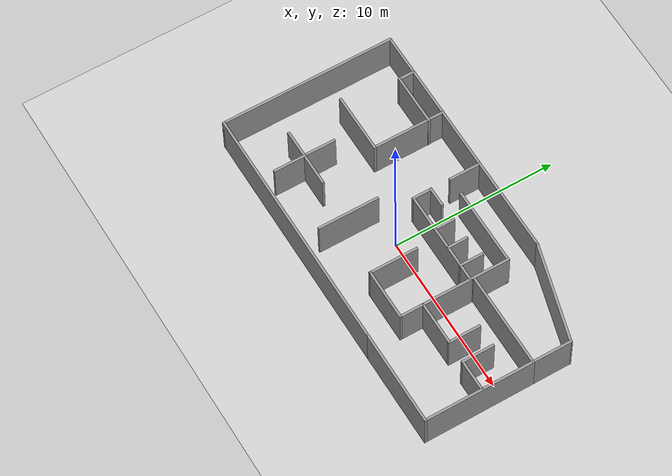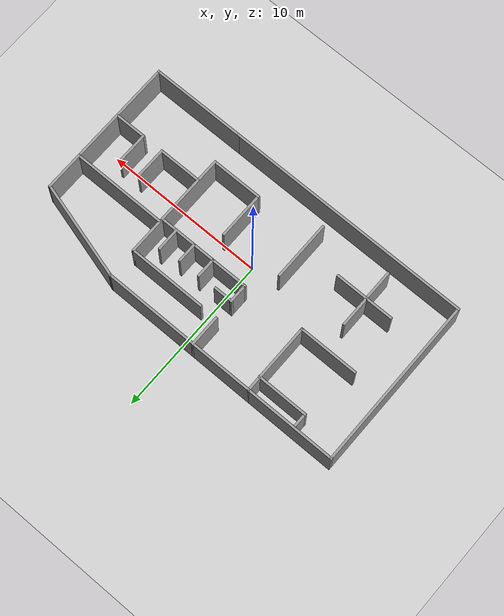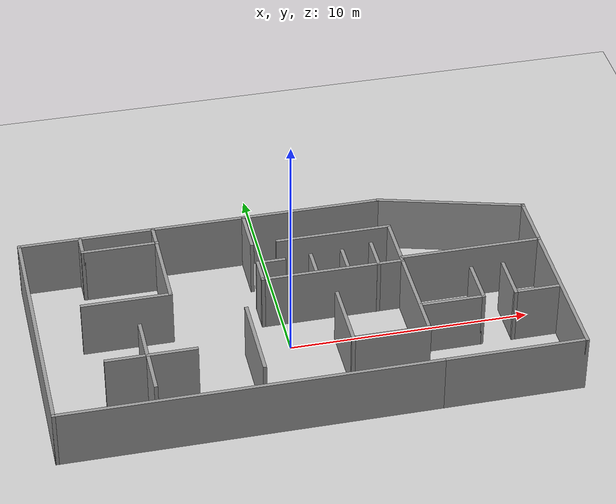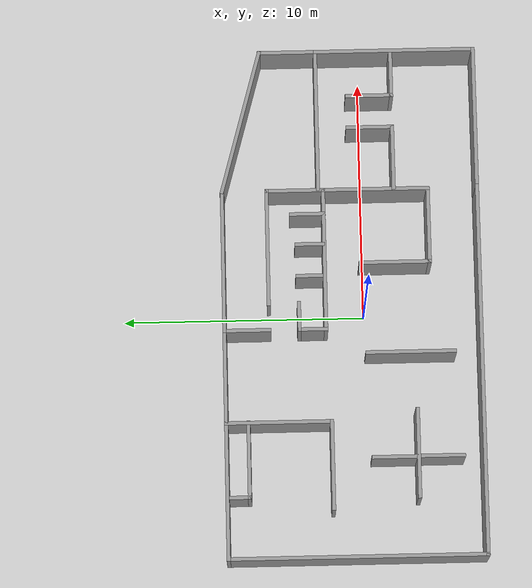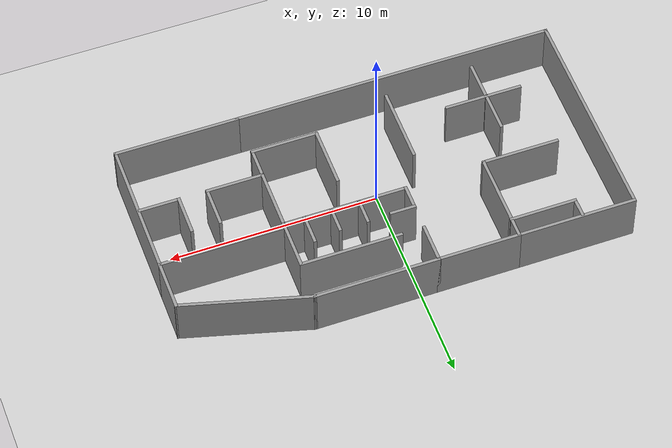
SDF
<sdf version="1.6">
 <world name="default">
  <light name="sun" type="directional">
   <pose>0 0 10 0 -0 0</pose>
   <diffuse>0.8 0.8 0.8 1</diffuse>
   <specular>0.1 0.1 0.1 1</specular>
   <attenuation>
    <range>1000</range>
    <constant>0.9</constant>
    <linear>0.01</linear>
    <quadratic>0.001</quadratic>
   </attenuation>
   <direction>-0.5 0.5 -1</direction>
  </light>
  <model name="ground_plane">
   <static>1</static>
   <link name="link">
    <collision name="collision">
     <geometry><plane><normal>0 0 1</normal><size>100 100</size></plane></geometry>
     <surface><friction><ode><mu>100</mu><mu2>50</mu2></ode></friction></surface>
    </collision>
    <visual name="visual">
     <cast_shadows>0</cast_shadows>
     <geometry><plane><normal>0 0 1</normal><size>100 100</size></plane></geometry>
     <material>
      <script><uri>file://media/materials/scripts/gazebo.material</uri><name>Gazebo/Grey</name></script>
     </material>
    </visual>
   </link>
  </model>
  <gravity>0 0 -9.8</gravity>
  <magnetic_field>6e-06 2.3e-05 -4.2e-05</magnetic_field>
  <atmosphere type="adiabatic"/>
  <physics name="default_physics" default="0" type="ode">
   <max_step_size>0.001</max_step_size>
   <real_time_factor>1</real_time_factor>
   <real_time_update_rate>1000</real_time_update_rate>
  </physics>
  <scene><ambient>0.4 0.4 0.4 1</ambient><background>0.7 0.7 0.7 1</background><shadows>1</shadows></scene>
  <spherical_coordinates>
   <surface_model>EARTH_WGS84</surface_model>
   <latitude_deg>0</latitude_deg>
   <longitude_deg>0</longitude_deg>
   <elevation>0</elevation>
   <heading_deg>0</heading_deg>
  </spherical_coordinates>
  <model name="Building3">
   <pose>0.340715 0.515177 0 0 -0 0</pose>
   <link name="Wall_153">
    <collision name="Wall_153_Collision">
     <geometry><box><size>4 0.15 2.5</size></box></geometry>
     <pose>0 0 1.25 0 -0 0</pose>
    </collision>
    <visual name="Wall_153_Visual">
     <pose>0 0 1.25 0 -0 0</pose>
     <geometry><box><size>4 0.15 2.5</size></box></geometry>
     <material>
      <script><uri>file://media/materials/scripts/gazebo.material</uri><name>Gazebo/Grey</name></script>
      <ambient>1 1 1 1</ambient>
     </material>
    </visual>
    <pose>-3.08371 5.29129 0 0 -0 0</pose>
   </link>
   <link name="Wall_154">
    <collision name="Wall_154_Collision">
     <geometry><box><size>2 0.15 2.5</size></box></geometry>
     <pose>0 0 1.25 0 -0 0</pose>
    </collision>
    <visual name="Wall_154_Visual">
     <pose>0 0 1.25 0 -0 0</pose>
     <geometry><box><size>2 0.15 2.5</size></box></geometry>
     <material>
      <script><uri>file://media/materials/scripts/gazebo.material</uri><name>Gazebo/Grey</name></script>
      <ambient>1 1 1 1</ambient>
     </material>
    </visual>
    <pose>-1.15871 4.36629 0 0 0 -1.5708</pose>
   </link>
   <link name="Wall_156">
    <collision name="Wall_156_Collision">
     <geometry><box><size>6 0.15 2.5</size></box></geometry>
     <pose>0 0 1.25 0 -0 0</pose>
    </collision>
    <visual name="Wall_156_Visual">
     <pose>0 0 1.25 0 -0 0</pose>
     <geometry><box><size>6 0.15 2.5</size></box></geometry>
     <material>
      <script><uri>file://media/materials/scripts/gazebo.material</uri><name>Gazebo/Grey</name></script>
      <ambient>1 1 1 1</ambient>
     </material>
    </visual>
    <pose>1.76629 5.29129 0 0 -0 0</pose>
   </link>
   <link name="Wall_161">
    <collision name="Wall_161_Collision">
     <geometry><box><size>4.9 0.15 2.5</size></box></geometry>
     <pose>0 0 1.25 0 -0 0</pose>
    </collision>
    <visual name="Wall_161_Visual">
     <pose>0 0 1.25 0 -0 0</pose>
     <geometry><box><size>4.9 0.15 2.5</size></box></geometry>
     <material>
      <script><uri>file://media/materials/scripts/gazebo.material</uri><name>Gazebo/Grey</name></script>
      <ambient>1 1 1 1</ambient>
     </material>
    </visual>
    <pose>2.31629 3.44129 0 0 -0 0</pose>
   </link>
   <link name="Wall_165">
    <collision name="Wall_165_Collision">
     <geometry><box><size>2.5 0.15 2.5</size></box></geometry>
     <pose>0 0 1.25 0 -0 0</pose>
    </collision>
    <visual name="Wall_165_Visual">
     <pose>0 0 1.25 0 -0 0</pose>
     <geometry><box><size>2.5 0.15 2.5</size></box></geometry>
     <material>
      <script><uri>file://media/materials/scripts/gazebo.material</uri><name>Gazebo/Grey</name></script>
      <ambient>1 1 1 1</ambient>
     </material>
    </visual>
    <pose>4.69129 2.26629 0 0 0 -1.5708</pose>
   </link>
   <link name="Wall_167">
    <collision name="Wall_167_Collision">
     <geometry><box><size>6 0.15 2.5</size></box></geometry>
     <pose>0 0 1.25 0 -0 0</pose>
    </collision>
    <visual name="Wall_167_Visual">
     <pose>0 0 1.25 0 -0 0</pose>
     <geometry><box><size>6 0.15 2.5</size></box></geometry>
     <material>
      <script><uri>file://media/materials/scripts/gazebo.material</uri><name>Gazebo/Grey</name></script>
      <ambient>1 1 1 1</ambient>
     </material>
    </visual>
    <pose>1.76629 1.09129 0 0 -0 3.14159</pose>
   </link>
   <link name="Wall_168">
    <collision name="Wall_168_Collision">
     <geometry><box><size>1.25 0.15 2.5</size></box></geometry>
     <pose>0 0 1.25 0 -0 0</pose>
    </collision>
    <visual name="Wall_168_Visual">
     <pose>0 0 1.25 0 -0 0</pose>
     <geometry><box><size>1.25 0.15 2.5</size></box></geometry>
     <material>
      <script><uri>file://media/materials/scripts/gazebo.material</uri><name>Gazebo/Grey</name></script>
      <ambient>1 1 1 1</ambient>
     </material>
    </visual>
    <pose>-1.15871 1.64129 0 0 -0 1.5708</pose>
   </link>
   <link name="Wall_170">
    <collision name="Wall_170_Collision">
     <geometry><box><size>1.25 0.15 2.5</size></box></geometry>
     <pose>0 0 1.25 0 -0 0</pose>
    </collision>
    <visual name="Wall_170_Visual">
     <pose>0 0 1.25 0 -0 0</pose>
     <geometry><box><size>1.25 0.15 2.5</size></box></geometry>
     <material>
      <script><uri>file://media/materials/scripts/gazebo.material</uri><name>Gazebo/Grey</name></script>
      <ambient>1 1 1 1</ambient>
     </material>
    </visual>
    <pose>-0.608713 2.19129 0 0 -0 0</pose>
   </link>
   <link name="Wall_172">
    <collision name="Wall_172_Collision">
     <geometry><box><size>1.25 0.15 2.5</size></box></geometry>
     <pose>0 0 1.25 0 -0 0</pose>
    </collision>
    <visual name="Wall_172_Visual">
     <pose>0 0 1.25 0 -0 0</pose>
     <geometry><box><size>1.25 0.15 2.5</size></box></geometry>
     <material>
      <script><uri>file://media/materials/scripts/gazebo.material</uri><name>Gazebo/Grey</name></script>
      <ambient>1 1 1 1</ambient>
     </material>
    </visual>
    <pose>1.0841 1.68212 0 0 -0 1.5708</pose>
   </link>
   <link name="Wall_174">
    <collision name="Wall_174_Collision">
     <geometry><box><size>1.25 0.15 2.5</size></box></geometry>
     <pose>0 0 1.25 0 -0 0</pose>
    </collision>
    <visual name="Wall_174_Visual">
     <pose>0 0 1.25 0 -0 0</pose>
     <geometry><box><size>1.25 0.15 2.5</size></box></geometry>
     <material>
      <script><uri>file://media/materials/scripts/gazebo.material</uri><name>Gazebo/Grey</name></script>
      <ambient>1 1 1 1</ambient>
     </material>
    </visual>
    <pose>2.41445 1.69349 0 0 -0 1.5708</pose>
   </link>
   <link name="Wall_177">
    <collision name="Wall_177_Collision">
     <geometry><box><size>1.5 0.15 2.5</size></box></geometry>
     <pose>0 0 1.25 0 -0 0</pose>
    </collision>
    <visual name="Wall_177_Visual">
     <pose>0 0 1.25 0 -0 0</pose>
     <geometry><box><size>1.5 0.15 2.5</size></box></geometry>
     <material>
      <script><uri>file://media/materials/scripts/gazebo.material</uri><name>Gazebo/Grey</name></script>
      <ambient>1 1 1 1</ambient>
     </material>
    </visual>
    <pose>3.68795 1.76164 0 0 -0 1.5708</pose>
   </link>
   <link name="Wall_179">
    <collision name="Wall_179_Collision">
     <geometry><box><size>4.5 0.15 2.5</size></box></geometry>
     <pose>0 0 1.25 0 -0 0</pose>
    </collision>
    <visual name="Wall_179_Visual">
     <pose>0 0 1.25 0 -0 0</pose>
     <geometry><box><size>4.5 0.15 2.5</size></box></geometry>
     <material>
      <script><uri>file://media/materials/scripts/gazebo.material</uri><name>Gazebo/Grey</name></script>
      <ambient>1 1 1 1</ambient>
     </material>
    </visual>
    <pose>-5.00871 3.11629 0 0 0 -1.5708</pose>
   </link>
   <link name="Wall_181">
    <collision name="Wall_181_Collision">
     <geometry><box><size>4.5 0.15 2.5</size></box></geometry>
     <pose>0 0 1.25 0 -0 0</pose>
    </collision>
    <visual name="Wall_181_Visual">
     <pose>0 0 1.25 0 -0 0</pose>
     <geometry><box><size>4.5 0.15 2.5</size></box></geometry>
     <material>
      <script><uri>file://media/materials/scripts/gazebo.material</uri><name>Gazebo/Grey</name></script>
      <ambient>1 1 1 1</ambient>
     </material>
    </visual>
    <pose>4.69129 -1.08371 0 0 0 -1.5708</pose>
   </link>
   <link name="Wall_187">
    <collision name="Wall_187_Collision">
     <geometry><box><size>3 0.15 2.5</size></box></geometry>
     <pose>0 0 1.25 0 -0 0</pose>
    </collision>
    <visual name="Wall_187_Visual">
     <pose>0 0 1.25 0 -0 0</pose>
     <geometry><box><size>3 0.15 2.5</size></box></geometry>
     <material>
      <script><uri>file://media/materials/scripts/gazebo.material</uri><name>Gazebo/Grey</name></script>
      <ambient>1 1 1 1</ambient>
     </material>
    </visual>
    <pose>1.59129 -1.83371 0 0 -0 1.5708</pose>
   </link>
   <link name="Wall_190">
    <collision name="Wall_190_Collision">
     <geometry><box><size>5.75 0.15 2.5</size></box></geometry>
     <pose>0 0 1.25 0 -0 0</pose>
    </collision>
    <visual name="Wall_190_Visual">
     <pose>0 0 1.25 0 -0 0</pose>
     <geometry><box><size>5.75 0.15 2.5</size></box></geometry>
     <material>
      <script><uri>file://media/materials/scripts/gazebo.material</uri><name>Gazebo/Grey</name></script>
      <ambient>1 1 1 1</ambient>
     </material>
    </visual>
    <pose>-7.80871 5.29129 0 0 -0 3.14159</pose>
   </link>
   <link name="Wall_194">
    <collision name="Wall_194_Collision">
     <geometry><box><size>10.75 0.15 2.5</size></box></geometry>
     <pose>0 0 1.25 0 -0 0</pose>
    </collision>
    <visual name="Wall_194_Visual">
     <pose>0 0 1.25 0 -0 0</pose>
     <geometry><box><size>10.75 0.15 2.5</size></box></geometry>
     <material>
      <script><uri>file://media/materials/scripts/gazebo.material</uri><name>Gazebo/Grey</name></script>
      <ambient>1 1 1 1</ambient>
     </material>
    </visual>
    <pose>-10.6087 -0.008714 0 0 0 -1.5708</pose>
   </link>
   <link name="Wall_197">
    <collision name="Wall_197_Collision">
     <geometry><box><size>15.5 0.15 2.5</size></box></geometry>
     <pose>0 0 1.25 0 -0 0</pose>
    </collision>
    <visual name="Wall_197_Visual">
     <pose>0 0 1.25 0 -0 0</pose>
     <geometry><box><size>15.5 0.15 2.5</size></box></geometry>
     <material>
      <script><uri>file://media/materials/scripts/gazebo.material</uri><name>Gazebo/Grey</name></script>
      <ambient>1 1 1 1</ambient>
     </material>
    </visual>
    <pose>-2.93371 -5.30871 0 0 -0 0</pose>
   </link>
   <link name="Wall_199">
    <collision name="Wall_199_Collision">
     <geometry><box><size>6 0.15 2.5</size></box></geometry>
     <pose>0 0 1.25 0 -0 0</pose>
    </collision>
    <visual name="Wall_199_Visual">
     <pose>0 0 1.25 0 -0 0</pose>
     <geometry><box><size>6 0.15 2.5</size></box></geometry>
     <material>
      <script><uri>file://media/materials/scripts/gazebo.material</uri><name>Gazebo/Grey</name></script>
      <ambient>1 1 1 1</ambient>
     </material>
    </visual>
    <pose>7.66629 1.29129 0 0 -0 0</pose>
   </link>
   <link name="Wall_200">
    <collision name="Wall_200_Collision">
     <geometry><box><size>6.75 0.15 2.5</size></box></geometry>
     <pose>0 0 1.25 0 -0 0</pose>
    </collision>
    <visual name="Wall_200_Visual">
     <pose>0 0 1.25 0 -0 0</pose>
     <geometry><box><size>6.75 0.15 2.5</size></box></geometry>
     <material>
      <script><uri>file://media/materials/scripts/gazebo.material</uri><name>Gazebo/Grey</name></script>
      <ambient>1 1 1 1</ambient>
     </material>
    </visual>
    <pose>10.5913 -2.00871 0 0 0 -1.5708</pose>
   </link>
   <link name="Wall_201">
    <collision name="Wall_201_Collision">
     <geometry><box><size>6 0.15 2.5</size></box></geometry>
     <pose>0 0 1.25 0 -0 0</pose>
    </collision>
    <visual name="Wall_201_Visual">
     <pose>0 0 1.25 0 -0 0</pose>
     <geometry><box><size>6 0.15 2.5</size></box></geometry>
     <material>
      <script><uri>file://media/materials/scripts/gazebo.material</uri><name>Gazebo/Grey</name></script>
      <ambient>1 1 1 1</ambient>
     </material>
    </visual>
    <pose>7.66629 -5.30871 0 0 -0 3.14159</pose>
   </link>
   <link name="Wall_203">
    <collision name="Wall_203_Collision">
     <geometry><box><size>3.75 0.15 2.5</size></box></geometry>
     <pose>0 0 1.25 0 -0 0</pose>
    </collision>
    <visual name="Wall_203_Visual">
     <pose>0 0 1.25 0 -0 0</pose>
     <geometry><box><size>3.75 0.15 2.5</size></box></geometry>
     <material>
      <script><uri>file://media/materials/scripts/gazebo.material</uri><name>Gazebo/Grey</name></script>
      <ambient>1 1 1 1</ambient>
     </material>
    </visual>
    <pose>-6.80871 0.941286 0 0 -0 3.14159</pose>
   </link>
   <link name="Wall_205">
    <collision name="Wall_205_Collision">
     <geometry><box><size>3.25 0.15 2.5</size></box></geometry>
     <pose>0 0 1.25 0 -0 0</pose>
    </collision>
    <visual name="Wall_205_Visual">
     <pose>0 0 1.25 0 -0 0</pose>
     <geometry><box><size>3.25 0.15 2.5</size></box></geometry>
     <material>
      <script><uri>file://media/materials/scripts/gazebo.material</uri><name>Gazebo/Grey</name></script>
      <ambient>1 1 1 1</ambient>
     </material>
    </visual>
    <pose>-6.53994 4.37764 0 0 -0 3.14159</pose>
   </link>
   <link name="Wall_206">
    <collision name="Wall_206_Collision">
     <geometry><box><size>1 0.15 2.5</size></box></geometry>
     <pose>0 0 1.25 0 -0 0</pose>
    </collision>
    <visual name="Wall_206_Visual">
     <pose>0 0 1.25 0 -0 0</pose>
     <geometry><box><size>1 0.15 2.5</size></box></geometry>
     <material>
      <script><uri>file://media/materials/scripts/gazebo.material</uri><name>Gazebo/Grey</name></script>
      <ambient>1 1 1 1</ambient>
     </material>
    </visual>
    <pose>-8.08994 4.80264 0 0 -0 1.5708</pose>
   </link>
   <link name="Wall_208">
    <collision name="Wall_208_Collision">
     <geometry><box><size>2.75 0.15 2.5</size></box></geometry>
     <pose>0 0 1.25 0 -0 0</pose>
    </collision>
    <visual name="Wall_208_Visual">
     <pose>0 0 1.25 0 -0 0</pose>
     <geometry><box><size>2.75 0.15 2.5</size></box></geometry>
     <material>
      <script><uri>file://media/materials/scripts/gazebo.material</uri><name>Gazebo/Grey</name></script>
      <ambient>1 1 1 1</ambient>
     </material>
    </visual>
    <pose>6.02612 -1.84909 0 0 -0 0</pose>
   </link>
   <link name="Wall_209">
    <collision name="Wall_209_Collision">
     <geometry><box><size>2 0.15 2.5</size></box></geometry>
     <pose>0 0 1.25 0 -0 0</pose>
    </collision>
    <visual name="Wall_209_Visual">
     <pose>0 0 1.25 0 -0 0</pose>
     <geometry><box><size>2 0.15 2.5</size></box></geometry>
     <material>
      <script><uri>file://media/materials/scripts/gazebo.material</uri><name>Gazebo/Grey</name></script>
      <ambient>1 1 1 1</ambient>
     </material>
    </visual>
    <pose>7.32612 -0.924095 0 0 -0 1.5708</pose>
   </link>
   <link name="Wall_211">
    <collision name="Wall_211_Collision">
     <geometry><box><size>3.25 0.15 2.5</size></box></geometry>
     <pose>0 0 1.25 0 -0 0</pose>
    </collision>
    <visual name="Wall_211_Visual">
     <pose>0 0 1.25 0 -0 0</pose>
     <geometry><box><size>3.25 0.15 2.5</size></box></geometry>
     <material>
      <script><uri>file://media/materials/scripts/gazebo.material</uri><name>Gazebo/Grey</name></script>
      <ambient>1 1 1 1</ambient>
     </material>
    </visual>
    <pose>3.14129 -3.25871 0 0 -0 3.14159</pose>
   </link>
   <link name="Wall_214">
    <collision name="Wall_214_Collision">
     <geometry><box><size>2 0.15 2.5</size></box></geometry>
     <pose>0 0 1.25 0 -0 0</pose>
    </collision>
    <visual name="Wall_214_Visual">
     <pose>0 0 1.25 0 -0 0</pose>
     <geometry><box><size>2 0.15 2.5</size></box></geometry>
     <material>
      <script><uri>file://media/materials/scripts/gazebo.material</uri><name>Gazebo/Grey</name></script>
      <ambient>1 1 1 1</ambient>
     </material>
    </visual>
    <pose>8.67612 -0.924095 0 0 -0 1.5708</pose>
   </link>
   <link name="Wall_216">
    <collision name="Wall_216_Collision">
     <geometry><box><size>2 0.15 2.5</size></box></geometry>
     <pose>0 0 1.25 0 -0 0</pose>
    </collision>
    <visual name="Wall_216_Visual">
     <pose>0 0 1.25 0 -0 0</pose>
     <geometry><box><size>2 0.15 2.5</size></box></geometry>
     <material>
      <script><uri>file://media/materials/scripts/gazebo.material</uri><name>Gazebo/Grey</name></script>
      <ambient>1 1 1 1</ambient>
     </material>
    </visual>
    <pose>9.60112 -1.84909 0 0 -0 0</pose>
   </link>
   <link name="Wall_219">
    <collision name="Wall_219_Collision">
     <geometry><box><size>2.5 0.15 2.5</size></box></geometry>
     <pose>0 0 1.25 0 -0 0</pose>
    </collision>
    <visual name="Wall_219_Visual">
     <pose>0 0 1.25 0 -0 0</pose>
     <geometry><box><size>2.5 0.15 2.5</size></box></geometry>
     <material>
      <script><uri>file://media/materials/scripts/gazebo.material</uri><name>Gazebo/Grey</name></script>
      <ambient>1 1 1 1</ambient>
     </material>
    </visual>
    <pose>10.5913 2.46629 0 0 0 -1.5708</pose>
   </link>
   <link name="Wall_223">
    <collision name="Wall_223_Collision">
     <geometry><box><size>6.27638 0.15 2.5</size></box></geometry>
     <pose>0 0 1.25 0 -0 0</pose>
    </collision>
    <visual name="Wall_223_Visual">
     <pose>0 0 1.25 0 -0 0</pose>
     <geometry><box><size>6.27638 0.15 2.5</size></box></geometry>
     <material>
      <script><uri>file://media/materials/scripts/gazebo.material</uri><name>Gazebo/Grey</name></script>
      <ambient>1 1 1 1</ambient>
     </material>
    </visual>
    <pose>7.64129 4.46629 0 0 -0 2.8689</pose>
   </link>
   <link name="Wall_225">
    <collision name="Wall_225_Collision">
     <geometry><box><size>3.75 0.15 2.5</size></box></geometry>
     <pose>0 0 1.25 0 -0 0</pose>
    </collision>
    <visual name="Wall_225_Visual">
     <pose>0 0 1.25 0 -0 0</pose>
     <geometry><box><size>3.75 0.15 2.5</size></box></geometry>
     <material>
      <script><uri>file://media/materials/scripts/gazebo.material</uri><name>Gazebo/Grey</name></script>
      <ambient>1 1 1 1</ambient>
     </material>
    </visual>
    <pose>-6.38175 -2.59169 0 0 -0 0</pose>
   </link>
   <link name="Wall_227">
    <collision name="Wall_227_Collision">
     <geometry><box><size>2 0.15 2.5</size></box></geometry>
     <pose>0 0 1.25 0 -0 0</pose>
    </collision>
    <visual name="Wall_227_Visual">
     <pose>0 0 1.25 0 -0 0</pose>
     <geometry><box><size>2 0.15 2.5</size></box></geometry>
     <material>
      <script><uri>file://media/materials/scripts/gazebo.material</uri><name>Gazebo/Grey</name></script>
      <ambient>1 1 1 1</ambient>
     </material>
    </visual>
    <pose>-6.53438 -1.6594 0 0 -0 1.5708</pose>
   </link>
   <link name="Wall_229">
    <collision name="Wall_229_Collision">
     <geometry><box><size>2 0.15 2.5</size></box></geometry>
     <pose>0 0 1.25 0 -0 0</pose>
    </collision>
    <visual name="Wall_229_Visual">
     <pose>0 0 1.25 0 -0 0</pose>
     <geometry><box><size>2 0.15 2.5</size></box></geometry>
     <material>
      <script><uri>file://media/materials/scripts/gazebo.material</uri><name>Gazebo/Grey</name></script>
      <ambient>1 1 1 1</ambient>
     </material>
    </visual>
    <pose>-6.51709 -3.5094 0 0 0 -1.5708</pose>
   </link>
   <link name="Wall_231">
    <collision name="Wall_231_Collision">
     <geometry><box><size>3.75 0.15 2.5</size></box></geometry>
     <pose>0 0 1.25 0 -0 0</pose>
    </collision>
    <visual name="Wall_231_Visual">
     <pose>0 0 1.25 0 -0 0</pose>
     <geometry><box><size>3.75 0.15 2.5</size></box></geometry>
     <material>
      <script><uri>file://media/materials/scripts/gazebo.material</uri><name>Gazebo/Grey</name></script>
      <ambient>1 1 1 1</ambient>
     </material>
    </visual>
    <pose>-2.17819 -2.39196 0 0 0 -1.5708</pose>
   </link>
   <static>1</static>
  </model>
 </world>
</sdf>
